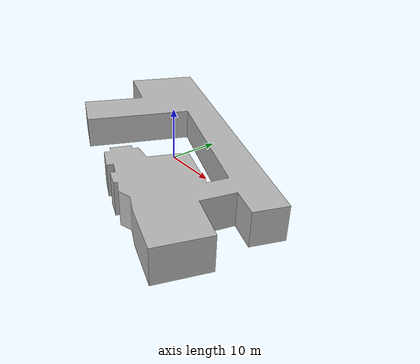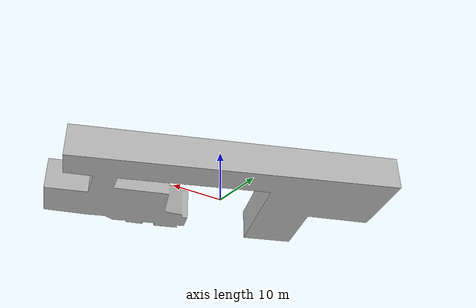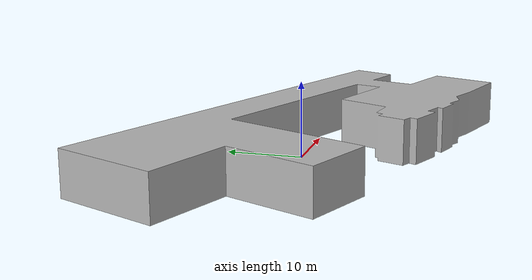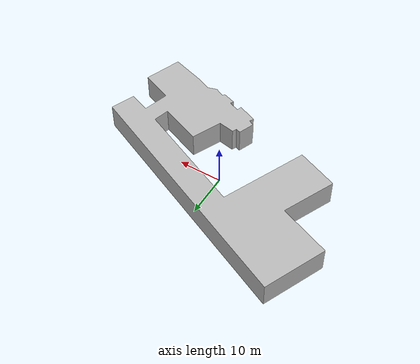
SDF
<?xml version="1.0" ?>
<sdf version="1.7">
  <model name="building_7133_assumed_a_hospital">
    <static>true</static>
    <link name="building_link">
      <visual name="building_visual">
        <geometry>
          <mesh>
            <uri>model://building_7133_assumed_a_hospital/meshes/construction_7133_assumed_A_Hospital_h6m.obj</uri>
          </mesh>
        </geometry>
      </visual>
    <collision name="building_collision">
      <geometry>
        <mesh>
          <uri>model://building_7133_assumed_a_hospital/meshes/construction_7133_assumed_A_Hospital_h6m.obj</uri>
        </mesh>
      </geometry>
    </collision>
    </link>
  </model>
</sdf>
